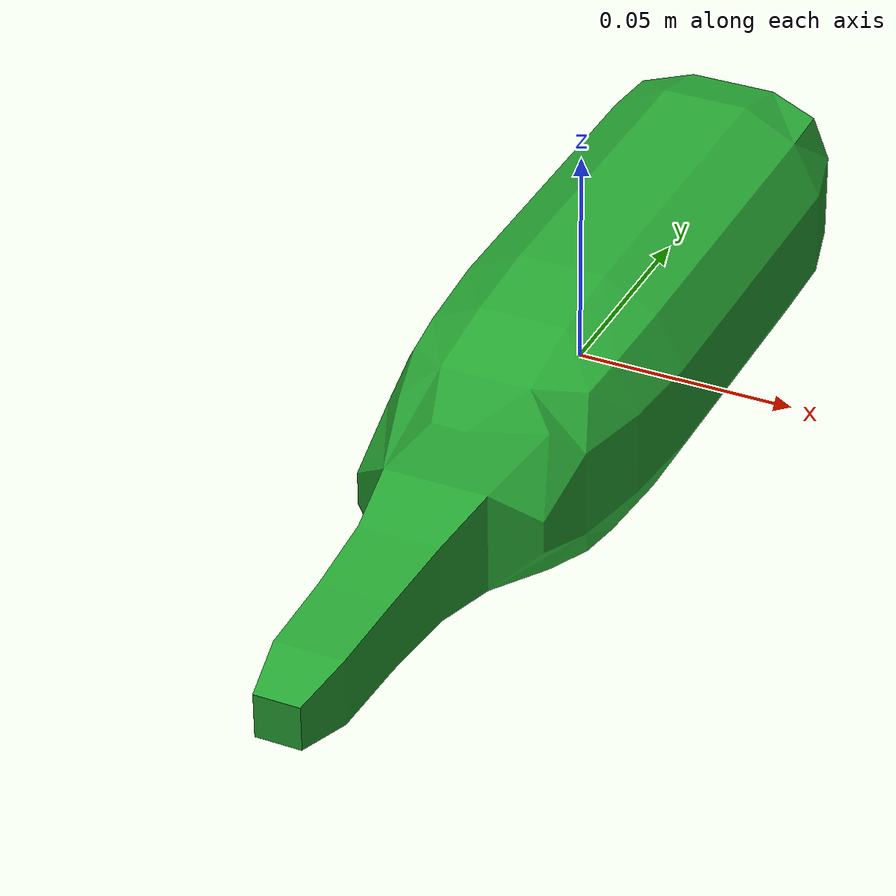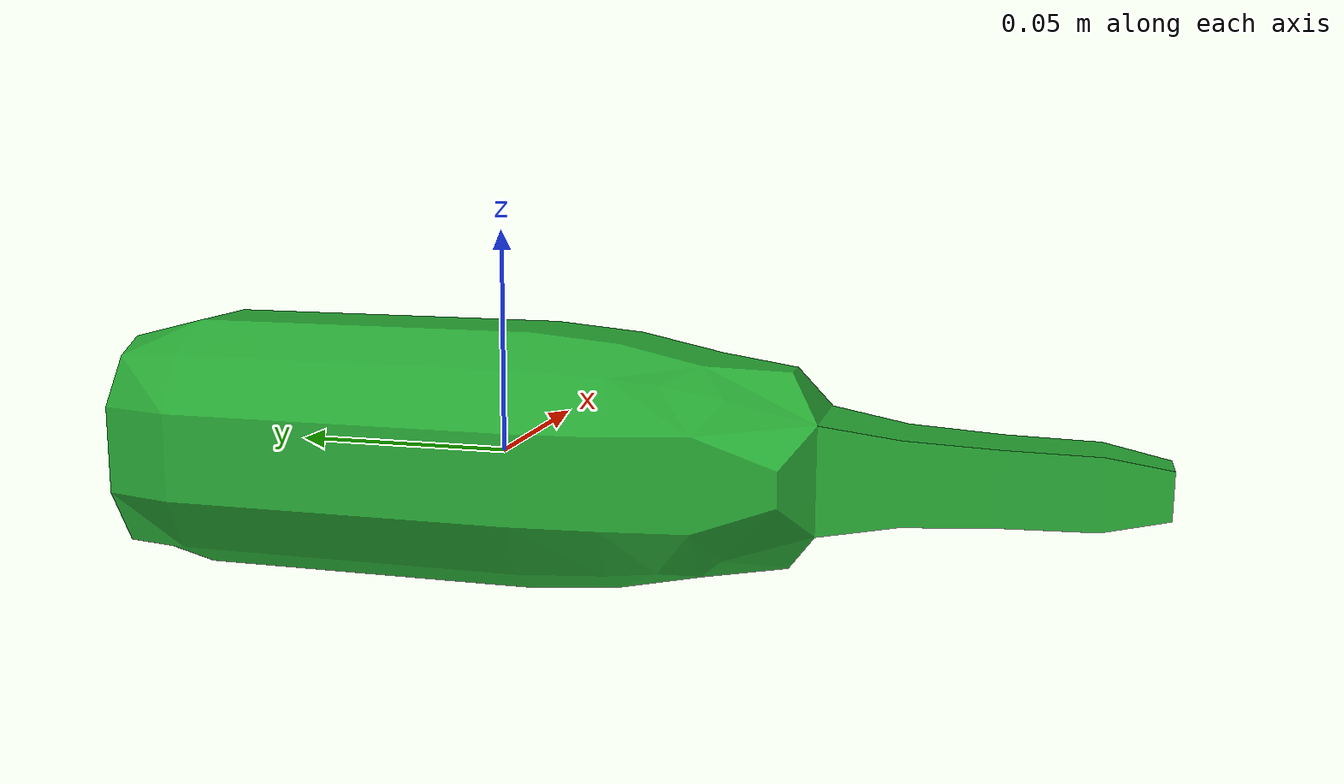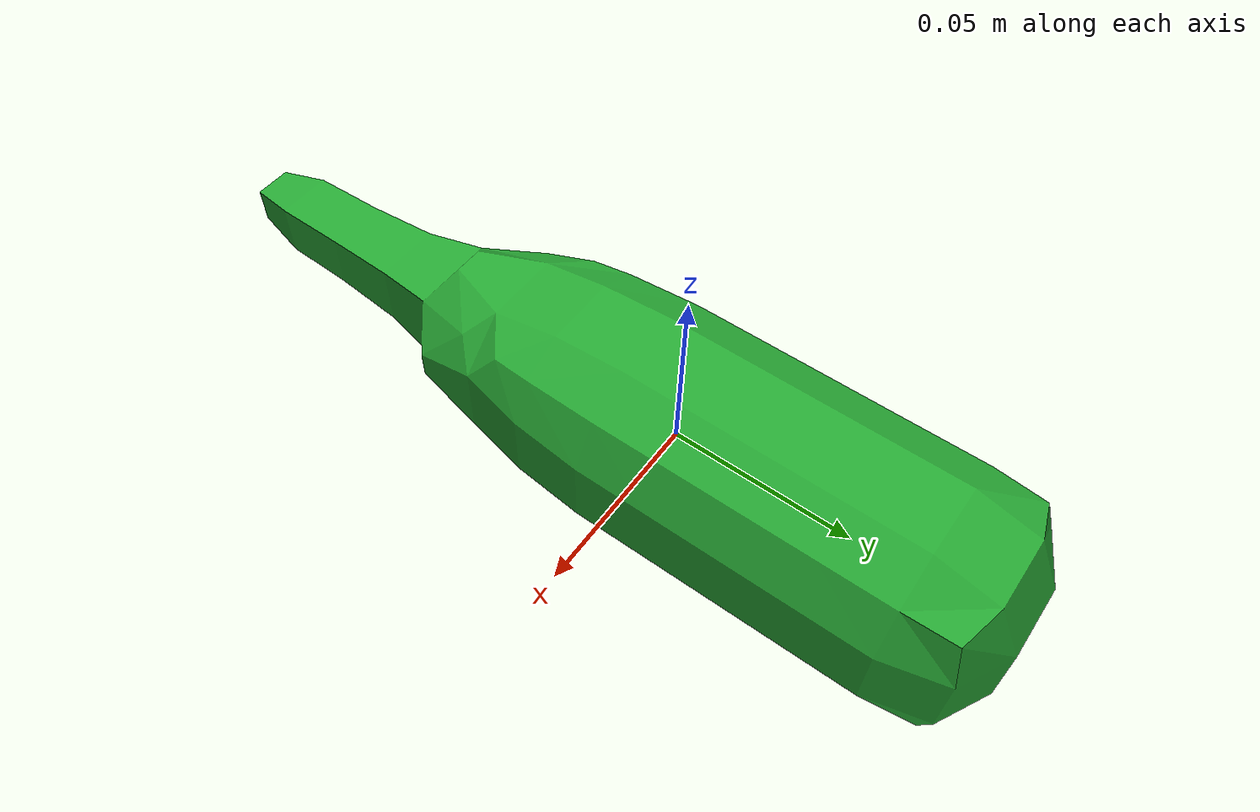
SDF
<?xml version='1.0'?>
<sdf version='1.7'>
  <model name='beer_bottle'>

    <plugin name="hydrodynamics" filename="libHydrodynamicsPlugin.so">
      <!-- Wave Model -->
      <wave_model>ocean_waves</wave_model>

      <!-- Hydrodynamics -->
      <damping_on>true</damping_on>
      <viscous_drag_on>true</viscous_drag_on>
      <pressure_drag_on>true</pressure_drag_on>

      <!-- Markers -->
      <markers>
        <update_rate>30</update_rate>
        <water_patch>false</water_patch>
        <waterline>false</waterline>
        <underwater_surface>false</underwater_surface>
      </markers>
    </plugin>

    <link name='link'>
      <inertial>
        <mass>0.25</mass>
        <inertia>
          <ixx>0.1636</ixx>
          <ixy>0.0</ixy>
          <ixz>0.0</ixz>
          <iyy>0.1636</iyy>
          <iyz>0.0</iyz>
          <izz>0.1636</izz>
        </inertia>
      </inertial>
      <pose>0 0 0 0 -0 0</pose>
      <visual name='visual'>
        <pose>0 0 0 0 -0 0</pose>
        <geometry>
          <mesh>
            <uri>model://beer_bottle/meshes/beer_bottle.obj</uri>
            <scale>1 1 1</scale>
          </mesh>
        </geometry>
        <material>
          <lighting>1</lighting>
          <script>
            <uri>file://media/materials/scripts/gazebo.material</uri>
            <name>Gazebo/Green</name>
          </script>
        </material>
        <transparency>0.1</transparency>
        <cast_shadows>1</cast_shadows>
      </visual>
      <collision name="base_collision">
        <pose>0 0 0 -1.5708 0 0</pose>
        <geometry>
          <box>
            <size>1 1 1</size>
          </box>
        </geometry>
      </collision>
    </link>
    <static>0</static>
    <allow_auto_disable>1</allow_auto_disable>
  </model>
</sdf>
